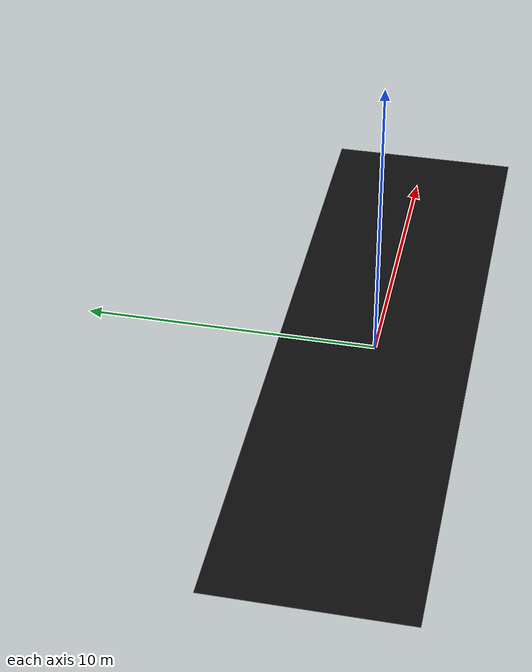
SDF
<?xml version="1.0" ?>
<sdf version="1.10">
  <model name="room_427_floor">
    <static>true</static>
    <link name="link">

      <collision name="collision">
        <geometry>
          <box>
            <size>24.206 6.579 0.01</size>
          </box>
        </geometry>
      </collision>

      <visual name="visual">
        <geometry>
          <box>
            <size>24.206 6.579 0.01</size>
          </box>
        </geometry>
        <material>
          <ambient>0.02 0.02 0.02 1</ambient>
          <diffuse>0.05 0.05 0.05 1</diffuse>
          <specular>0.8 0.8 0.8 1</specular>
          <pbr>
            <metal>
              <albedo>0.04 0.04 0.04 1</albedo>
              <roughness_value>0.05</roughness_value>
              <metalness_value>0.0</metalness_value>
            </metal>
          </pbr>
        </material>
      </visual>

    </link>
  </model>
</sdf>
